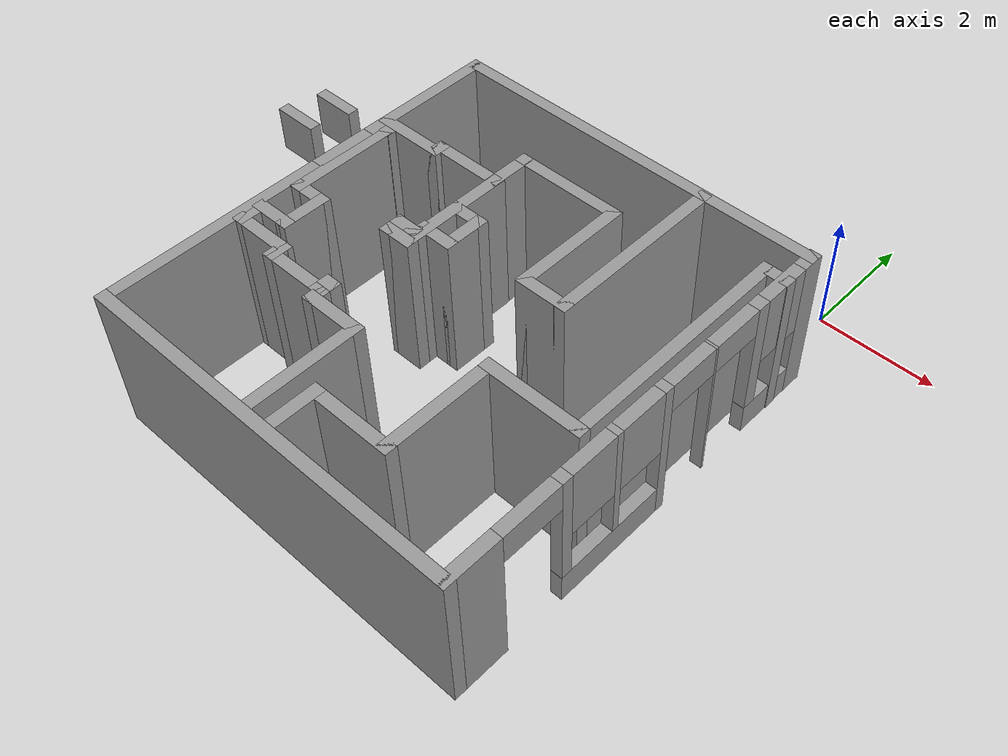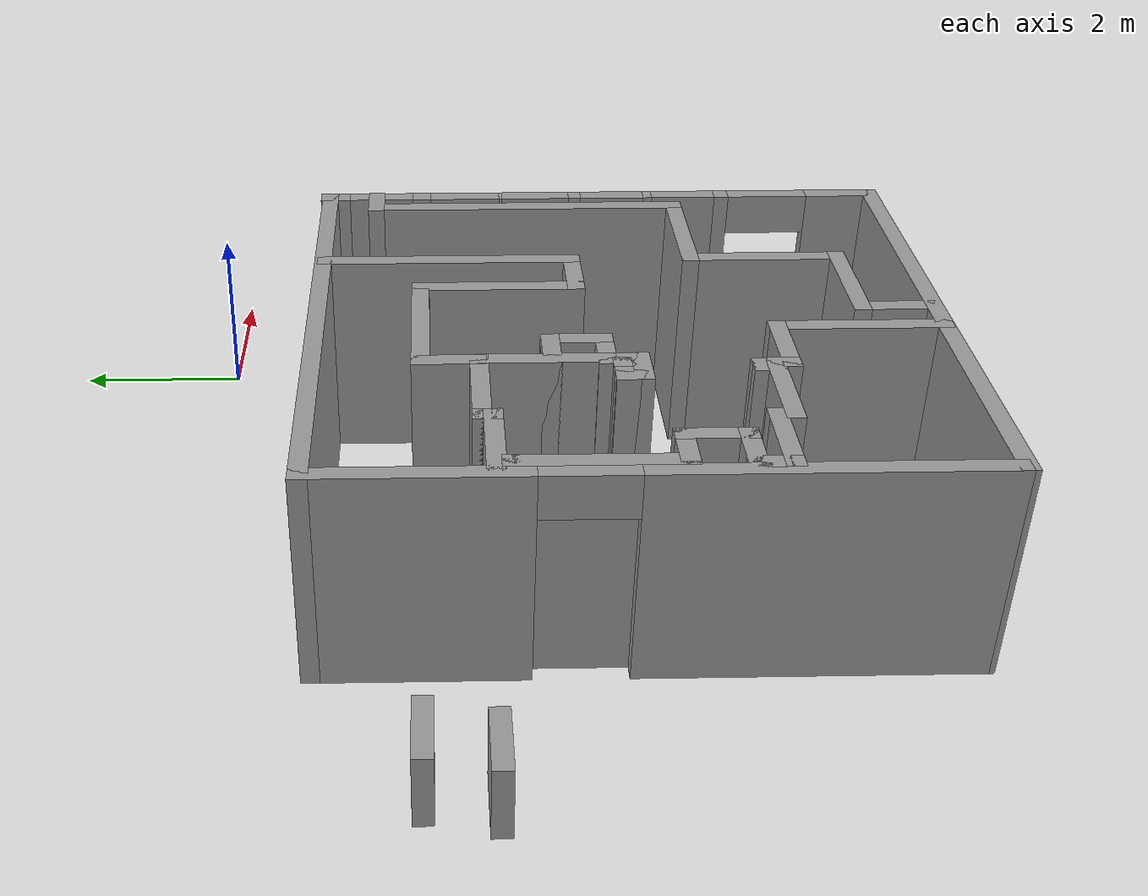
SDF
<?xml version='1.0'?>
<sdf version='1.4'>
  <model name='room_experiments_slam'>
    <link name='Wall_16'>
      <collision name='Wall_16_Collision'>
        <geometry>
          <box>
            <size>6.58 0.2 2.5</size>
          </box>
        </geometry>
        <pose>0 0 1.25 0 -0 0</pose>
      </collision>
      <visual name='Wall_16_Visual'>
        <pose>0 0 1.25 0 -0 0</pose>
        <geometry>
          <box>
            <size>6.58 0.2 2.5</size>
          </box>
        </geometry>
        <material>
          <script>
            <uri>file://media/materials/scripts/gazebo.material</uri>
            <name>Gazebo/Grey</name>
          </script>
        </material>
      </visual>
      <velocity_decay>
        <linear>0</linear>
        <angular>0</angular>
      </velocity_decay>
      <pose>-2.88 -1.33 0 0 -0 3.14159</pose>
    </link>
    <link name='Wall_17'>
      <pose>-6.07 -4.755 0 0 0 -1.5708</pose>
      <visual name='Wall_17_Visual_0'>
        <pose>-2.345 0 1.25 0 -0 0</pose>
        <geometry>
          <box>
            <size>2.36 0.2 2.5</size>
          </box>
        </geometry>
        <material>
          <script>
            <uri>file://media/materials/scripts/gazebo.material</uri>
            <name>Gazebo/Grey</name>
          </script>
        </material>
      </visual>
      <collision name='Wall_17_Collision_0'>
        <geometry>
          <box>
            <size>2.36 0.2 2.5</size>
          </box>
        </geometry>
        <pose>-2.345 0 1.25 0 -0 0</pose>
      </collision>
      <visual name='Wall_17_Visual_1'>
        <pose>1.68 0 1.25 0 -0 0</pose>
        <geometry>
          <box>
            <size>3.69 0.2 2.5</size>
          </box>
        </geometry>
        <material>
          <script>
            <uri>file://media/materials/scripts/gazebo.material</uri>
            <name>Gazebo/Grey</name>
          </script>
        </material>
      </visual>
      <collision name='Wall_17_Collision_1'>
        <geometry>
          <box>
            <size>3.69 0.2 2.5</size>
          </box>
        </geometry>
        <pose>1.68 0 1.25 0 -0 0</pose>
      </collision>
      <visual name='Wall_17_Visual_2'>
        <pose>-0.665 0 2.25 0 -0 0</pose>
        <geometry>
          <box>
            <size>1 0.2 0.5</size>
          </box>
        </geometry>
        <material>
          <script>
            <uri>file://media/materials/scripts/gazebo.material</uri>
            <name>Gazebo/Grey</name>
          </script>
        </material>
      </visual>
      <collision name='Wall_17_Collision_2'>
        <geometry>
          <box>
            <size>1 0.2 0.5</size>
          </box>
        </geometry>
        <pose>-0.665 0 2.25 0 -0 0</pose>
      </collision>
    </link>
    <link name='Wall_20'>
      <collision name='Wall_20_Collision'>
        <geometry>
          <box>
            <size>1.22 0.2 2.5</size>
          </box>
        </geometry>
        <pose>0 0 1.25 0 -0 0</pose>
      </collision>
      <visual name='Wall_20_Visual'>
        <pose>0 0 1.25 0 -0 0</pose>
        <geometry>
          <box>
            <size>1.22 0.2 2.5</size>
          </box>
        </geometry>
        <material>
          <script>
            <uri>file://media/materials/scripts/gazebo.material</uri>
            <name>Gazebo/Grey</name>
          </script>
        </material>
      </visual>
      <velocity_decay>
        <linear>0</linear>
        <angular>0</angular>
      </velocity_decay>
      <pose>-5.54 -3.21 0 0 -0 0</pose>
    </link>
    <link name='Wall_21'>
      <collision name='Wall_21_Collision'>
        <geometry>
          <box>
            <size>0.31 0.2 2.5</size>
          </box>
        </geometry>
        <pose>0 0 1.25 0 -0 0</pose>
      </collision>
      <visual name='Wall_21_Visual'>
        <pose>0 0 1.25 0 -0 0</pose>
        <geometry>
          <box>
            <size>0.31 0.2 2.5</size>
          </box>
        </geometry>
        <material>
          <script>
            <uri>file://media/materials/scripts/gazebo.material</uri>
            <name>Gazebo/Grey</name>
          </script>
        </material>
      </visual>
      <velocity_decay>
        <linear>0</linear>
        <angular>0</angular>
      </velocity_decay>
      <pose>-5.03 -3.155 0 0 -0 1.5708</pose>
    </link>
    <link name='Wall_22'>
      <collision name='Wall_22_Collision'>
        <geometry>
          <box>
            <size>1.31 0.2 2.5</size>
          </box>
        </geometry>
        <pose>0 0 1.25 0 -0 0</pose>
      </collision>
      <visual name='Wall_22_Visual'>
        <pose>0 0 1.25 0 -0 0</pose>
        <geometry>
          <box>
            <size>1.31 0.2 2.5</size>
          </box>
        </geometry>
        <material>
          <script>
            <uri>file://media/materials/scripts/gazebo.material</uri>
            <name>Gazebo/Grey</name>
          </script>
        </material>
      </visual>
      <velocity_decay>
        <linear>0</linear>
        <angular>0</angular>
      </velocity_decay>
      <pose>-4.475 -3.1 0 0 -0 0</pose>
    </link>
    <link name='Wall_23'>
      <collision name='Wall_23_Collision'>
        <geometry>
          <box>
            <size>1.91 0.2 2.5</size>
          </box>
        </geometry>
        <pose>0 0 1.25 0 -0 0</pose>
      </collision>
      <visual name='Wall_23_Visual'>
        <pose>0 0 1.25 0 -0 0</pose>
        <geometry>
          <box>
            <size>1.91 0.2 2.5</size>
          </box>
        </geometry>
        <material>
          <script>
            <uri>file://media/materials/scripts/gazebo.material</uri>
            <name>Gazebo/Grey</name>
          </script>
        </material>
      </visual>
      <velocity_decay>
        <linear>0</linear>
        <angular>0</angular>
      </velocity_decay>
      <pose>-3.92 -3.955 0 0 0 -1.5708</pose>
    </link>
    <link name='Wall_24'>
      <collision name='Wall_24_Collision'>
        <geometry>
          <box>
            <size>0.57 0.2 2.5</size>
          </box>
        </geometry>
        <pose>0 0 1.25 0 -0 0</pose>
      </collision>
      <visual name='Wall_24_Visual'>
        <pose>0 0 1.25 0 -0 0</pose>
        <geometry>
          <box>
            <size>0.57 0.2 2.5</size>
          </box>
        </geometry>
        <material>
          <script>
            <uri>file://media/materials/scripts/gazebo.material</uri>
            <name>Gazebo/Grey</name>
          </script>
        </material>
      </visual>
      <velocity_decay>
        <linear>0</linear>
        <angular>0</angular>
      </velocity_decay>
      <pose>-4.105 -4.81 0 0 -0 3.14159</pose>
    </link>
    <link name='Wall_25'>
      <collision name='Wall_25_Collision'>
        <geometry>
          <box>
            <size>0.4 0.2 2.5</size>
          </box>
        </geometry>
        <pose>0 0 1.25 0 -0 0</pose>
      </collision>
      <visual name='Wall_25_Visual'>
        <pose>0 0 1.25 0 -0 0</pose>
        <geometry>
          <box>
            <size>0.4 0.2 2.5</size>
          </box>
        </geometry>
        <material>
          <script>
            <uri>file://media/materials/scripts/gazebo.material</uri>
            <name>Gazebo/Grey</name>
          </script>
        </material>
      </visual>
      <velocity_decay>
        <linear>0</linear>
        <angular>0</angular>
      </velocity_decay>
      <pose>-4.29 -4.71 0 0 -0 1.5708</pose>
    </link>
    <link name='Wall_26'>
      <collision name='Wall_26_Collision'>
        <geometry>
          <box>
            <size>0.47 0.2 2.5</size>
          </box>
        </geometry>
        <pose>0 0 1.25 0 -0 0</pose>
      </collision>
      <visual name='Wall_26_Visual'>
        <pose>0 0 1.25 0 -0 0</pose>
        <geometry>
          <box>
            <size>0.47 0.2 2.5</size>
          </box>
        </geometry>
        <material>
          <script>
            <uri>file://media/materials/scripts/gazebo.material</uri>
            <name>Gazebo/Grey</name>
          </script>
        </material>
      </visual>
      <velocity_decay>
        <linear>0</linear>
        <angular>0</angular>
      </velocity_decay>
      <pose>-4.155 -4.61 0 0 -0 0</pose>
    </link>
    <link name='Wall_27'>
      <collision name='Wall_27_Collision'>
        <geometry>
          <box>
            <size>0.2 0.2 2.5</size>
          </box>
        </geometry>
        <pose>0 0 1.25 0 -0 0</pose>
      </collision>
      <visual name='Wall_27_Visual'>
        <pose>0 0 1.25 0 -0 0</pose>
        <geometry>
          <box>
            <size>0.2 0.2 2.5</size>
          </box>
        </geometry>
        <material>
          <script>
            <uri>file://media/materials/scripts/gazebo.material</uri>
            <name>Gazebo/Grey</name>
          </script>
        </material>
      </visual>
      <velocity_decay>
        <linear>0</linear>
        <angular>0</angular>
      </velocity_decay>
      <pose>-4.02 -4.61 0 0 -0 0</pose>
    </link>
    <link name='Wall_28'>
      <collision name='Wall_28_Collision'>
        <geometry>
          <box>
            <size>0.222361 0.2 2.5</size>
          </box>
        </geometry>
        <pose>0 0 1.25 0 -0 0</pose>
      </collision>
      <visual name='Wall_28_Visual'>
        <pose>0 0 1.25 0 -0 0</pose>
        <geometry>
          <box>
            <size>0.222361 0.2 2.5</size>
          </box>
        </geometry>
        <material>
          <script>
            <uri>file://media/materials/scripts/gazebo.material</uri>
            <name>Gazebo/Grey</name>
          </script>
        </material>
      </visual>
      <velocity_decay>
        <linear>0</linear>
        <angular>0</angular>
      </velocity_decay>
      <pose>-4.03 -4.615 0 0 0 -2.67794</pose>
    </link>
    <link name='Wall_30'>
      <collision name='Wall_30_Collision'>
        <geometry>
          <box>
            <size>0.66 0.2 2.5</size>
          </box>
        </geometry>
        <pose>0 0 1.25 0 -0 0</pose>
      </collision>
      <visual name='Wall_30_Visual'>
        <pose>0 0 1.25 0 -0 0</pose>
        <geometry>
          <box>
            <size>0.66 0.2 2.5</size>
          </box>
        </geometry>
        <material>
          <script>
            <uri>file://media/materials/scripts/gazebo.material</uri>
            <name>Gazebo/Grey</name>
          </script>
        </material>
      </visual>
      <velocity_decay>
        <linear>0</linear>
        <angular>0</angular>
      </velocity_decay>
      <pose>-3.72 -4.46 0 0 -0 0</pose>
    </link>
    <link name='Wall_31'>
      <collision name='Wall_31_Collision'>
        <geometry>
          <box>
            <size>0.78 0.2 2.5</size>
          </box>
        </geometry>
        <pose>0 0 1.25 0 -0 0</pose>
      </collision>
      <visual name='Wall_31_Visual'>
        <pose>0 0 1.25 0 -0 0</pose>
        <geometry>
          <box>
            <size>0.78 0.2 2.5</size>
          </box>
        </geometry>
        <material>
          <script>
            <uri>file://media/materials/scripts/gazebo.material</uri>
            <name>Gazebo/Grey</name>
          </script>
        </material>
      </visual>
      <velocity_decay>
        <linear>0</linear>
        <angular>0</angular>
      </velocity_decay>
      <pose>-3.49 -4.17 0 0 -0 1.5708</pose>
    </link>
    <link name='Wall_32'>
      <collision name='Wall_32_Collision'>
        <geometry>
          <box>
            <size>0.63 0.2 2.5</size>
          </box>
        </geometry>
        <pose>0 0 1.25 0 -0 0</pose>
      </collision>
      <visual name='Wall_32_Visual'>
        <pose>0 0 1.25 0 -0 0</pose>
        <geometry>
          <box>
            <size>0.63 0.2 2.5</size>
          </box>
        </geometry>
        <material>
          <script>
            <uri>file://media/materials/scripts/gazebo.material</uri>
            <name>Gazebo/Grey</name>
          </script>
        </material>
      </visual>
      <velocity_decay>
        <linear>0</linear>
        <angular>0</angular>
      </velocity_decay>
      <pose>-3.705 -3.88 0 0 -0 3.14159</pose>
    </link>
    <link name='Wall_34'>
      <collision name='Wall_34_Collision'>
        <geometry>
          <box>
            <size>0.8 0.2 2.5</size>
          </box>
        </geometry>
        <pose>0 0 1.25 0 -0 0</pose>
      </collision>
      <visual name='Wall_34_Visual'>
        <pose>0 0 1.25 0 -0 0</pose>
        <geometry>
          <box>
            <size>0.8 0.2 2.5</size>
          </box>
        </geometry>
        <material>
          <script>
            <uri>file://media/materials/scripts/gazebo.material</uri>
            <name>Gazebo/Grey</name>
          </script>
        </material>
      </visual>
      <velocity_decay>
        <linear>0</linear>
        <angular>0</angular>
      </velocity_decay>
      <pose>-3.93 -2.78 0 0 -0 1.5708</pose>
    </link>
    <link name='Wall_35'>
      <collision name='Wall_35_Collision'>
        <geometry>
          <box>
            <size>1.9 0.2 2.5</size>
          </box>
        </geometry>
        <pose>0 0 1.25 0 -0 0</pose>
      </collision>
      <visual name='Wall_35_Visual'>
        <pose>0 0 1.25 0 -0 0</pose>
        <geometry>
          <box>
            <size>1.9 0.2 2.5</size>
          </box>
        </geometry>
        <material>
          <script>
            <uri>file://media/materials/scripts/gazebo.material</uri>
            <name>Gazebo/Grey</name>
          </script>
        </material>
      </visual>
      <velocity_decay>
        <linear>0</linear>
        <angular>0</angular>
      </velocity_decay>
      <pose>-3.08 -2.48 0 0 -0 0</pose>
    </link>
    <link name='Wall_36'>
      <collision name='Wall_36_Collision'>
        <geometry>
          <box>
            <size>1.98 0.2 2.5</size>
          </box>
        </geometry>
        <pose>0 0 1.25 0 -0 0</pose>
      </collision>
      <visual name='Wall_36_Visual'>
        <pose>0 0 1.25 0 -0 0</pose>
        <geometry>
          <box>
            <size>1.98 0.2 2.5</size>
          </box>
        </geometry>
        <material>
          <script>
            <uri>file://media/materials/scripts/gazebo.material</uri>
            <name>Gazebo/Grey</name>
          </script>
        </material>
      </visual>
      <velocity_decay>
        <linear>0</linear>
        <angular>0</angular>
      </velocity_decay>
      <pose>-2.23 -3.37 0 0 0 -1.5708</pose>
    </link>
    <link name='Wall_37'>
      <collision name='Wall_37_Collision'>
        <geometry>
          <box>
            <size>0.9 0.2 2.5</size>
          </box>
        </geometry>
        <pose>0 0 1.25 0 -0 0</pose>
      </collision>
      <visual name='Wall_37_Visual'>
        <pose>0 0 1.25 0 -0 0</pose>
        <geometry>
          <box>
            <size>0.9 0.2 2.5</size>
          </box>
        </geometry>
        <material>
          <script>
            <uri>file://media/materials/scripts/gazebo.material</uri>
            <name>Gazebo/Grey</name>
          </script>
        </material>
      </visual>
      <velocity_decay>
        <linear>0</linear>
        <angular>0</angular>
      </velocity_decay>
      <pose>-1.88 -4.26 0 0 -0 0</pose>
    </link>
    <link name='Wall_38'>
      <collision name='Wall_38_Collision'>
        <geometry>
          <box>
            <size>3.1 0.2 2.5</size>
          </box>
        </geometry>
        <pose>0 0 1.25 0 -0 0</pose>
      </collision>
      <visual name='Wall_38_Visual'>
        <pose>0 0 1.25 0 -0 0</pose>
        <geometry>
          <box>
            <size>3.1 0.2 2.5</size>
          </box>
        </geometry>
        <material>
          <script>
            <uri>file://media/materials/scripts/gazebo.material</uri>
            <name>Gazebo/Grey</name>
          </script>
        </material>
      </visual>
      <velocity_decay>
        <linear>0</linear>
        <angular>0</angular>
      </velocity_decay>
      <pose>-1.53 -2.81 0 0 -0 1.5708</pose>
    </link>
    <link name='Wall_40'>
      <collision name='Wall_40_Collision'>
        <geometry>
          <box>
            <size>0.53 0.2 2.5</size>
          </box>
        </geometry>
        <pose>0 0 1.25 0 -0 0</pose>
      </collision>
      <visual name='Wall_40_Visual'>
        <pose>0 0 1.25 0 -0 0</pose>
        <geometry>
          <box>
            <size>0.53 0.2 2.5</size>
          </box>
        </geometry>
        <material>
          <script>
            <uri>file://media/materials/scripts/gazebo.material</uri>
            <name>Gazebo/Grey</name>
          </script>
        </material>
      </visual>
      <velocity_decay>
        <linear>0</linear>
        <angular>0</angular>
      </velocity_decay>
      <pose>0.155 -1.92 0 0 -0 3.14159</pose>
    </link>
    <link name='Wall_41'>
      <collision name='Wall_41_Collision'>
        <geometry>
          <box>
            <size>3.95 0.2 2.5</size>
          </box>
        </geometry>
        <pose>0 0 1.25 0 -0 0</pose>
      </collision>
      <visual name='Wall_41_Visual'>
        <pose>0 0 1.25 0 -0 0</pose>
        <geometry>
          <box>
            <size>3.95 0.2 2.5</size>
          </box>
        </geometry>
        <material>
          <script>
            <uri>file://media/materials/scripts/gazebo.material</uri>
            <name>Gazebo/Grey</name>
          </script>
        </material>
      </visual>
      <velocity_decay>
        <linear>0</linear>
        <angular>0</angular>
      </velocity_decay>
      <pose>-0.01 -3.795 0 0 0 -1.5708</pose>
    </link>
    <link name='Wall_42'>
      <collision name='Wall_42_Collision'>
        <geometry>
          <box>
            <size>1.71 0.2 2.5</size>
          </box>
        </geometry>
        <pose>0 0 1.25 0 -0 0</pose>
      </collision>
      <visual name='Wall_42_Visual'>
        <pose>0 0 1.25 0 -0 0</pose>
        <geometry>
          <box>
            <size>1.71 0.2 2.5</size>
          </box>
        </geometry>
        <material>
          <script>
            <uri>file://media/materials/scripts/gazebo.material</uri>
            <name>Gazebo/Grey</name>
          </script>
        </material>
      </visual>
      <velocity_decay>
        <linear>0</linear>
        <angular>0</angular>
      </velocity_decay>
      <pose>-0.765 -5.67 0 0 -0 3.14159</pose>
    </link>
    <link name='Wall_43'>
      <collision name='Wall_43_Collision'>
        <geometry>
          <box>
            <size>1.95 0.2 2.5</size>
          </box>
        </geometry>
        <pose>0 0 1.25 0 -0 0</pose>
      </collision>
      <visual name='Wall_43_Visual'>
        <pose>0 0 1.25 0 -0 0</pose>
        <geometry>
          <box>
            <size>1.95 0.2 2.5</size>
          </box>
        </geometry>
        <material>
          <script>
            <uri>file://media/materials/scripts/gazebo.material</uri>
            <name>Gazebo/Grey</name>
          </script>
        </material>
      </visual>
      <velocity_decay>
        <linear>0</linear>
        <angular>0</angular>
      </velocity_decay>
      <pose>-1.52 -6.545 0 0 0 -1.5708</pose>
    </link>
    <link name='Wall_44'>
      <collision name='Wall_44_Collision'>
        <geometry>
          <box>
            <size>1.48 0.2 2.5</size>
          </box>
        </geometry>
        <pose>0 0 1.25 0 -0 0</pose>
      </collision>
      <visual name='Wall_44_Visual'>
        <pose>0 0 1.25 0 -0 0</pose>
        <geometry>
          <box>
            <size>1.48 0.2 2.5</size>
          </box>
        </geometry>
        <material>
          <script>
            <uri>file://media/materials/scripts/gazebo.material</uri>
            <name>Gazebo/Grey</name>
          </script>
        </material>
      </visual>
      <velocity_decay>
        <linear>0</linear>
        <angular>0</angular>
      </velocity_decay>
      <pose>-2.16 -7.42 0 0 -0 3.14159</pose>
    </link>
    <link name='Wall_45'>
      <collision name='Wall_45_Collision'>
        <geometry>
          <box>
            <size>1 0.2 2.5</size>
          </box>
        </geometry>
        <pose>0 0 1.25 0 -0 0</pose>
      </collision>
      <visual name='Wall_45_Visual'>
        <pose>0 0 1.25 0 -0 0</pose>
        <geometry>
          <box>
            <size>1 0.2 2.5</size>
          </box>
        </geometry>
        <material>
          <script>
            <uri>file://media/materials/scripts/gazebo.material</uri>
            <name>Gazebo/Grey</name>
          </script>
        </material>
      </visual>
      <velocity_decay>
        <linear>0</linear>
        <angular>0</angular>
      </velocity_decay>
      <pose>-2.8 -7.82 0 0 0 -1.5708</pose>
    </link>
    <link name='Wall_48'>
      <collision name='Wall_48_Collision'>
        <geometry>
          <box>
            <size>2.04 0.2 2.5</size>
          </box>
        </geometry>
        <pose>0 0 1.25 0 -0 0</pose>
      </collision>
      <visual name='Wall_48_Visual'>
        <pose>0 0 1.25 0 -0 0</pose>
        <geometry>
          <box>
            <size>2.04 0.2 2.5</size>
          </box>
        </geometry>
        <material>
          <script>
            <uri>file://media/materials/scripts/gazebo.material</uri>
            <name>Gazebo/Grey</name>
          </script>
        </material>
      </visual>
      <velocity_decay>
        <linear>0</linear>
        <angular>0</angular>
      </velocity_decay>
      <pose>-3.24 -7.31 0 0 -0 1.5708</pose>
    </link>
    <link name='Wall_49'>
      <collision name='Wall_49_Collision'>
        <geometry>
          <box>
            <size>1.02 0.2 2.5</size>
          </box>
        </geometry>
        <pose>0 0 1.25 0 -0 0</pose>
      </collision>
      <visual name='Wall_49_Visual'>
        <pose>0 0 1.25 0 -0 0</pose>
        <geometry>
          <box>
            <size>1.02 0.2 2.5</size>
          </box>
        </geometry>
        <material>
          <script>
            <uri>file://media/materials/scripts/gazebo.material</uri>
            <name>Gazebo/Grey</name>
          </script>
        </material>
      </visual>
      <velocity_decay>
        <linear>0</linear>
        <angular>0</angular>
      </velocity_decay>
      <pose>-3.65 -6.39 0 0 -0 3.14159</pose>
    </link>
    <link name='Wall_50'>
      <collision name='Wall_50_Collision'>
        <geometry>
          <box>
            <size>0.52 0.2 2.5</size>
          </box>
        </geometry>
        <pose>0 0 1.25 0 -0 0</pose>
      </collision>
      <visual name='Wall_50_Visual'>
        <pose>0 0 1.25 0 -0 0</pose>
        <geometry>
          <box>
            <size>0.52 0.2 2.5</size>
          </box>
        </geometry>
        <material>
          <script>
            <uri>file://media/materials/scripts/gazebo.material</uri>
            <name>Gazebo/Grey</name>
          </script>
        </material>
      </visual>
      <velocity_decay>
        <linear>0</linear>
        <angular>0</angular>
      </velocity_decay>
      <pose>-4.06 -6.23 0 0 -0 1.5708</pose>
    </link>
    <link name='Wall_51'>
      <collision name='Wall_51_Collision'>
        <geometry>
          <box>
            <size>0.27 0.2 2.5</size>
          </box>
        </geometry>
        <pose>0 0 1.25 0 -0 0</pose>
      </collision>
      <visual name='Wall_51_Visual'>
        <pose>0 0 1.25 0 -0 0</pose>
        <geometry>
          <box>
            <size>0.27 0.2 2.5</size>
          </box>
        </geometry>
        <material>
          <script>
            <uri>file://media/materials/scripts/gazebo.material</uri>
            <name>Gazebo/Grey</name>
          </script>
        </material>
      </visual>
      <velocity_decay>
        <linear>0</linear>
        <angular>0</angular>
      </velocity_decay>
      <pose>-4.095 -6.07 0 0 -0 3.14159</pose>
    </link>
    <link name='Wall_52'>
      <collision name='Wall_52_Collision'>
        <geometry>
          <box>
            <size>0.35 0.2 2.5</size>
          </box>
        </geometry>
        <pose>0 0 1.25 0 -0 0</pose>
      </collision>
      <visual name='Wall_52_Visual'>
        <pose>0 0 1.25 0 -0 0</pose>
        <geometry>
          <box>
            <size>0.35 0.2 2.5</size>
          </box>
        </geometry>
        <material>
          <script>
            <uri>file://media/materials/scripts/gazebo.material</uri>
            <name>Gazebo/Grey</name>
          </script>
        </material>
      </visual>
      <velocity_decay>
        <linear>0</linear>
        <angular>0</angular>
      </velocity_decay>
      <pose>-4.13 -6.145 0 0 0 -1.5708</pose>
    </link>
    <link name='Wall_53'>
      <collision name='Wall_53_Collision'>
        <geometry>
          <box>
            <size>1.15 0.2 2.5</size>
          </box>
        </geometry>
        <pose>0 0 1.25 0 -0 0</pose>
      </collision>
      <visual name='Wall_53_Visual'>
        <pose>0 0 1.25 0 -0 0</pose>
        <geometry>
          <box>
            <size>1.15 0.2 2.5</size>
          </box>
        </geometry>
        <material>
          <script>
            <uri>file://media/materials/scripts/gazebo.material</uri>
            <name>Gazebo/Grey</name>
          </script>
        </material>
      </visual>
      <velocity_decay>
        <linear>0</linear>
        <angular>0</angular>
      </velocity_decay>
      <pose>-4.605 -6.22 0 0 -0 3.14159</pose>
    </link>
    <link name='Wall_54'>
      <collision name='Wall_54_Collision'>
        <geometry>
          <box>
            <size>0.37 0.2 2.5</size>
          </box>
        </geometry>
        <pose>0 0 1.25 0 -0 0</pose>
      </collision>
      <visual name='Wall_54_Visual'>
        <pose>0 0 1.25 0 -0 0</pose>
        <geometry>
          <box>
            <size>0.37 0.2 2.5</size>
          </box>
        </geometry>
        <material>
          <script>
            <uri>file://media/materials/scripts/gazebo.material</uri>
            <name>Gazebo/Grey</name>
          </script>
        </material>
      </visual>
      <velocity_decay>
        <linear>0</linear>
        <angular>0</angular>
      </velocity_decay>
      <pose>-5.08 -6.135 0 0 -0 1.5708</pose>
    </link>
    <link name='Wall_55'>
      <collision name='Wall_55_Collision'>
        <geometry>
          <box>
            <size>1.07 0.2 2.5</size>
          </box>
        </geometry>
        <pose>0 0 1.25 0 -0 0</pose>
      </collision>
      <visual name='Wall_55_Visual'>
        <pose>0 0 1.25 0 -0 0</pose>
        <geometry>
          <box>
            <size>1.07 0.2 2.5</size>
          </box>
        </geometry>
        <material>
          <script>
            <uri>file://media/materials/scripts/gazebo.material</uri>
            <name>Gazebo/Grey</name>
          </script>
        </material>
      </visual>
      <velocity_decay>
        <linear>0</linear>
        <angular>0</angular>
      </velocity_decay>
      <pose>-5.515 -6.05 0 0 -0 3.14159</pose>
    </link>
    <link name='Wall_56'>
      <collision name='Wall_56_Collision'>
        <geometry>
          <box>
            <size>0.55 0.2 2.5</size>
          </box>
        </geometry>
        <pose>0 0 1.25 0 -0 0</pose>
      </collision>
      <visual name='Wall_56_Visual'>
        <pose>0 0 1.25 0 -0 0</pose>
        <geometry>
          <box>
            <size>0.55 0.2 2.5</size>
          </box>
        </geometry>
        <material>
          <script>
            <uri>file://media/materials/scripts/gazebo.material</uri>
            <name>Gazebo/Grey</name>
          </script>
        </material>
      </visual>
      <velocity_decay>
        <linear>0</linear>
        <angular>0</angular>
      </velocity_decay>
      <pose>-5.95 -5.875 0 0 -0 1.5708</pose>
    </link>
    <link name='Wall_57'>
      <collision name='Wall_57_Collision'>
        <geometry>
          <box>
            <size>0.71 0.2 2.5</size>
          </box>
        </geometry>
        <pose>0 0 1.25 0 -0 0</pose>
      </collision>
      <visual name='Wall_57_Visual'>
        <pose>0 0 1.25 0 -0 0</pose>
        <geometry>
          <box>
            <size>0.71 0.2 2.5</size>
          </box>
        </geometry>
        <material>
          <script>
            <uri>file://media/materials/scripts/gazebo.material</uri>
            <name>Gazebo/Grey</name>
          </script>
        </material>
      </visual>
      <velocity_decay>
        <linear>0</linear>
        <angular>0</angular>
      </velocity_decay>
      <pose>-5.695 -5.7 0 0 -0 0</pose>
    </link>
    <link name='Wall_58'>
      <collision name='Wall_58_Collision'>
        <geometry>
          <box>
            <size>0.84 0.2 2.5</size>
          </box>
        </geometry>
        <pose>0 0 1.25 0 -0 0</pose>
      </collision>
      <visual name='Wall_58_Visual'>
        <pose>0 0 1.25 0 -0 0</pose>
        <geometry>
          <box>
            <size>0.84 0.2 2.5</size>
          </box>
        </geometry>
        <material>
          <script>
            <uri>file://media/materials/scripts/gazebo.material</uri>
            <name>Gazebo/Grey</name>
          </script>
        </material>
      </visual>
      <velocity_decay>
        <linear>0</linear>
        <angular>0</angular>
      </velocity_decay>
      <pose>-5.44 -5.38 0 0 -0 1.5708</pose>
    </link>
    <link name='Wall_59'>
      <collision name='Wall_59_Collision'>
        <geometry>
          <box>
            <size>0.65 0.2 2.5</size>
          </box>
        </geometry>
        <pose>0 0 1.25 0 -0 0</pose>
      </collision>
      <visual name='Wall_59_Visual'>
        <pose>0 0 1.25 0 -0 0</pose>
        <geometry>
          <box>
            <size>0.65 0.2 2.5</size>
          </box>
        </geometry>
        <material>
          <script>
            <uri>file://media/materials/scripts/gazebo.material</uri>
            <name>Gazebo/Grey</name>
          </script>
        </material>
      </visual>
      <velocity_decay>
        <linear>0</linear>
        <angular>0</angular>
      </velocity_decay>
      <pose>-5.665 -5.06 0 0 -0 3.14159</pose>
    </link>
    <link name='Wall_60'>
      <collision name='Wall_60_Collision'>
        <geometry>
          <box>
            <size>1.9 0.2 2.5</size>
          </box>
        </geometry>
        <pose>0 0 1.25 0 -0 0</pose>
      </collision>
      <visual name='Wall_60_Visual'>
        <pose>0 0 1.25 0 -0 0</pose>
        <geometry>
          <box>
            <size>1.9 0.2 2.5</size>
          </box>
        </geometry>
        <material>
          <script>
            <uri>file://media/materials/scripts/gazebo.material</uri>
            <name>Gazebo/Grey</name>
          </script>
        </material>
      </visual>
      <velocity_decay>
        <linear>0</linear>
        <angular>0</angular>
      </velocity_decay>
      <pose>-5.89 -4.21 0 0 -0 1.5708</pose>
    </link>
    <link name='Wall_61'>
      <collision name='Wall_61_Collision'>
        <geometry>
          <box>
            <size>0.21 0.2 2.5</size>
          </box>
        </geometry>
        <pose>0 0 1.25 0 -0 0</pose>
      </collision>
      <visual name='Wall_61_Visual'>
        <pose>0 0 1.25 0 -0 0</pose>
        <geometry>
          <box>
            <size>0.21 0.2 2.5</size>
          </box>
        </geometry>
        <material>
          <script>
            <uri>file://media/materials/scripts/gazebo.material</uri>
            <name>Gazebo/Grey</name>
          </script>
        </material>
      </visual>
      <velocity_decay>
        <linear>0</linear>
        <angular>0</angular>
      </velocity_decay>
      <pose>-5.885 -3.36 0 0 -0 0</pose>
    </link>
    <link name='Wall_8'>
      <pose>0.31 -4.775 0 0 0 -1.5708</pose>
      <visual name='Wall_8_Visual_0'>
        <pose>-3.38 0 1.25 0 -0 0</pose>
        <geometry>
          <box>
            <size>0.37 0.2 2.5</size>
          </box>
        </geometry>
        <material>
          <script>
            <uri>file://media/materials/scripts/gazebo.material</uri>
            <name>Gazebo/Grey</name>
          </script>
        </material>
      </visual>
      <collision name='Wall_8_Collision_0'>
        <geometry>
          <box>
            <size>0.37 0.2 2.5</size>
          </box>
        </geometry>
        <pose>-3.38 0 1.25 0 -0 0</pose>
      </collision>
      <visual name='Wall_8_Visual_1'>
        <pose>-1.28 0 1.25 0 -0 0</pose>
        <geometry>
          <box>
            <size>0.04 0.2 2.5</size>
          </box>
        </geometry>
        <material>
          <script>
            <uri>file://media/materials/scripts/gazebo.material</uri>
            <name>Gazebo/Grey</name>
          </script>
        </material>
      </visual>
      <collision name='Wall_8_Collision_1'>
        <geometry>
          <box>
            <size>0.04 0.2 2.5</size>
          </box>
        </geometry>
        <pose>-1.28 0 1.25 0 -0 0</pose>
      </collision>
      <visual name='Wall_8_Visual_2'>
        <pose>-0.3325 0 1.25 0 -0 0</pose>
        <geometry>
          <box>
            <size>0.155 0.2 2.5</size>
          </box>
        </geometry>
        <material>
          <script>
            <uri>file://media/materials/scripts/gazebo.material</uri>
            <name>Gazebo/Grey</name>
          </script>
        </material>
      </visual>
      <collision name='Wall_8_Collision_2'>
        <geometry>
          <box>
            <size>0.155 0.2 2.5</size>
          </box>
        </geometry>
        <pose>-0.3325 0 1.25 0 -0 0</pose>
      </collision>
      <visual name='Wall_8_Visual_3'>
        <pose>3.1 0 1.25 0 -0 0</pose>
        <geometry>
          <box>
            <size>0.93 0.2 2.5</size>
          </box>
        </geometry>
        <material>
          <script>
            <uri>file://media/materials/scripts/gazebo.material</uri>
            <name>Gazebo/Grey</name>
          </script>
        </material>
      </visual>
      <collision name='Wall_8_Collision_3'>
        <geometry>
          <box>
            <size>0.93 0.2 2.5</size>
          </box>
        </geometry>
        <pose>3.1 0 1.25 0 -0 0</pose>
      </collision>
      <visual name='Wall_8_Visual_4'>
        <pose>-2.6825 0 0.25 0 -0 0</pose>
        <geometry>
          <box>
            <size>1.025 0.2 0.5</size>
          </box>
        </geometry>
        <material>
          <script>
            <uri>file://media/materials/scripts/gazebo.material</uri>
            <name>Gazebo/Grey</name>
          </script>
        </material>
      </visual>
      <collision name='Wall_8_Collision_4'>
        <geometry>
          <box>
            <size>1.025 0.2 0.5</size>
          </box>
        </geometry>
        <pose>-2.6825 0 0.25 0 -0 0</pose>
      </collision>
      <visual name='Wall_8_Visual_5'>
        <pose>0.69 0 0.25 0 -0 0</pose>
        <geometry>
          <box>
            <size>1.89 0.2 0.5</size>
          </box>
        </geometry>
        <material>
          <script>
            <uri>file://media/materials/scripts/gazebo.material</uri>
            <name>Gazebo/Grey</name>
          </script>
        </material>
      </visual>
      <collision name='Wall_8_Collision_5'>
        <geometry>
          <box>
            <size>1.89 0.2 0.5</size>
          </box>
        </geometry>
        <pose>0.69 0 0.25 0 -0 0</pose>
      </collision>
      <visual name='Wall_8_Visual_6'>
        <pose>-2.2825 0 1.5 0 -0 0</pose>
        <geometry>
          <box>
            <size>0.225 0.2 2</size>
          </box>
        </geometry>
        <material>
          <script>
            <uri>file://media/materials/scripts/gazebo.material</uri>
            <name>Gazebo/Grey</name>
          </script>
        </material>
      </visual>
      <collision name='Wall_8_Collision_6'>
        <geometry>
          <box>
            <size>0.225 0.2 2</size>
          </box>
        </geometry>
        <pose>-2.2825 0 1.5 0 -0 0</pose>
      </collision>
      <visual name='Wall_8_Visual_7'>
        <pose>-2.2825 0 1.5 0 -0 0</pose>
        <geometry>
          <box>
            <size>0.225 0.2 2</size>
          </box>
        </geometry>
        <material>
          <script>
            <uri>file://media/materials/scripts/gazebo.material</uri>
            <name>Gazebo/Grey</name>
          </script>
        </material>
      </visual>
      <collision name='Wall_8_Collision_7'>
        <geometry>
          <box>
            <size>0.225 0.2 2</size>
          </box>
        </geometry>
        <pose>-2.2825 0 1.5 0 -0 0</pose>
      </collision>
      <visual name='Wall_8_Visual_8'>
        <pose>0.6 0 1.5 0 -0 0</pose>
        <geometry>
          <box>
            <size>0.11 0.2 2</size>
          </box>
        </geometry>
        <material>
          <script>
            <uri>file://media/materials/scripts/gazebo.material</uri>
            <name>Gazebo/Grey</name>
          </script>
        </material>
      </visual>
      <collision name='Wall_8_Collision_8'>
        <geometry>
          <box>
            <size>0.11 0.2 2</size>
          </box>
        </geometry>
        <pose>0.6 0 1.5 0 -0 0</pose>
      </collision>
      <visual name='Wall_8_Visual_9'>
        <pose>1.545 0 1.5 0 -0 0</pose>
        <geometry>
          <box>
            <size>0.18 0.2 2</size>
          </box>
        </geometry>
        <material>
          <script>
            <uri>file://media/materials/scripts/gazebo.material</uri>
            <name>Gazebo/Grey</name>
          </script>
        </material>
      </visual>
      <collision name='Wall_8_Collision_9'>
        <geometry>
          <box>
            <size>0.18 0.2 2</size>
          </box>
        </geometry>
        <pose>1.545 0 1.5 0 -0 0</pose>
      </collision>
      <visual name='Wall_8_Visual_10'>
        <pose>-2.795 0 1.9 0 -0 0</pose>
        <geometry>
          <box>
            <size>0.8 0.2 1.2</size>
          </box>
        </geometry>
        <material>
          <script>
            <uri>file://media/materials/scripts/gazebo.material</uri>
            <name>Gazebo/Grey</name>
          </script>
        </material>
      </visual>
      <collision name='Wall_8_Collision_10'>
        <geometry>
          <box>
            <size>0.8 0.2 1.2</size>
          </box>
        </geometry>
        <pose>-2.795 0 1.9 0 -0 0</pose>
      </collision>
      <visual name='Wall_8_Visual_11'>
        <pose>0.145 0 1.9 0 -0 0</pose>
        <geometry>
          <box>
            <size>0.8 0.2 1.2</size>
          </box>
        </geometry>
        <material>
          <script>
            <uri>file://media/materials/scripts/gazebo.material</uri>
            <name>Gazebo/Grey</name>
          </script>
        </material>
      </visual>
      <collision name='Wall_8_Collision_11'>
        <geometry>
          <box>
            <size>0.8 0.2 1.2</size>
          </box>
        </geometry>
        <pose>0.145 0 1.9 0 -0 0</pose>
      </collision>
      <visual name='Wall_8_Visual_12'>
        <pose>1.055 0 1.9 0 -0 0</pose>
        <geometry>
          <box>
            <size>0.8 0.2 1.2</size>
          </box>
        </geometry>
        <material>
          <script>
            <uri>file://media/materials/scripts/gazebo.material</uri>
            <name>Gazebo/Grey</name>
          </script>
        </material>
      </visual>
      <collision name='Wall_8_Collision_12'>
        <geometry>
          <box>
            <size>0.8 0.2 1.2</size>
          </box>
        </geometry>
        <pose>1.055 0 1.9 0 -0 0</pose>
      </collision>
      <visual name='Wall_8_Visual_13'>
        <pose>-0.835 0 2.25 0 -0 0</pose>
        <geometry>
          <box>
            <size>0.85 0.2 0.5</size>
          </box>
        </geometry>
        <material>
          <script>
            <uri>file://media/materials/scripts/gazebo.material</uri>
            <name>Gazebo/Grey</name>
          </script>
        </material>
      </visual>
      <collision name='Wall_8_Collision_13'>
        <geometry>
          <box>
            <size>0.85 0.2 0.5</size>
          </box>
        </geometry>
        <pose>-0.835 0 2.25 0 -0 0</pose>
      </collision>
      <visual name='Wall_8_Visual_14'>
        <pose>-1.735 0 2.25 0 -0 0</pose>
        <geometry>
          <box>
            <size>0.87 0.2 0.5</size>
          </box>
        </geometry>
        <material>
          <script>
            <uri>file://media/materials/scripts/gazebo.material</uri>
            <name>Gazebo/Grey</name>
          </script>
        </material>
      </visual>
      <collision name='Wall_8_Collision_14'>
        <geometry>
          <box>
            <size>0.87 0.2 0.5</size>
          </box>
        </geometry>
        <pose>-1.735 0 2.25 0 -0 0</pose>
      </collision>
      <visual name='Wall_8_Visual_15'>
        <pose>-1.735 0 2.25 0 -0 0</pose>
        <geometry>
          <box>
            <size>0.87 0.2 0.5</size>
          </box>
        </geometry>
        <material>
          <script>
            <uri>file://media/materials/scripts/gazebo.material</uri>
            <name>Gazebo/Grey</name>
          </script>
        </material>
      </visual>
      <collision name='Wall_8_Collision_15'>
        <geometry>
          <box>
            <size>0.87 0.2 0.5</size>
          </box>
        </geometry>
        <pose>-1.735 0 2.25 0 -0 0</pose>
      </collision>
      <visual name='Wall_8_Visual_16'>
        <pose>2.135 0 2.25 0 -0 0</pose>
        <geometry>
          <box>
            <size>1 0.2 0.5</size>
          </box>
        </geometry>
        <material>
          <script>
            <uri>file://media/materials/scripts/gazebo.material</uri>
            <name>Gazebo/Grey</name>
          </script>
        </material>
      </visual>
      <collision name='Wall_8_Collision_16'>
        <geometry>
          <box>
            <size>1 0.2 0.5</size>
          </box>
        </geometry>
        <pose>2.135 0 2.25 0 -0 0</pose>
      </collision>
    </link>
    <link name='Wall_9'>
      <collision name='Wall_9_Collision'>
        <geometry>
          <box>
            <size>6.58 0.2 2.5</size>
          </box>
        </geometry>
        <pose>0 0 1.25 0 -0 0</pose>
      </collision>
      <visual name='Wall_9_Visual'>
        <pose>0 0 1.25 0 -0 0</pose>
        <geometry>
          <box>
            <size>6.58 0.2 2.5</size>
          </box>
        </geometry>
        <material>
          <script>
            <uri>file://media/materials/scripts/gazebo.material</uri>
            <name>Gazebo/Grey</name>
          </script>
        </material>
      </visual>
      <velocity_decay>
        <linear>0</linear>
        <angular>0</angular>
      </velocity_decay>
      <pose>-2.88 -8.24 0 0 -0 3.14159</pose>
    </link>
    <link name='Window_2'>
      <collision name='Window_2_Collision'>
        <geometry>
          <box>
            <size>0.8 0.2 0.8</size>
          </box>
        </geometry>
        <pose>0 0 0.4 0 -0 0</pose>
      </collision>
      <visual name='Window_2_Visual'>
        <pose>0 0 0.4 0 -0 0</pose>
        <geometry>
          <box>
            <size>0.8 0.2 0.8</size>
          </box>
        </geometry>
        <material>
          <script>
            <uri>file://media/materials/scripts/gazebo.material</uri>
            <name>Gazebo/Grey</name>
          </script>
        </material>
      </visual>
      <velocity_decay>
        <linear>0</linear>
        <angular>0</angular>
      </velocity_decay>
      <pose>-8.24 -2.49 0.5 0 -0 0</pose>
    </link>
    <link name='Window_4'>
      <collision name='Window_4_Collision'>
        <geometry>
          <box>
            <size>0.8 0.2 0.8</size>
          </box>
        </geometry>
        <pose>0 0 0.4 0 -0 0</pose>
      </collision>
      <visual name='Window_4_Visual'>
        <pose>0 0 0.4 0 -0 0</pose>
        <geometry>
          <box>
            <size>0.8 0.2 0.8</size>
          </box>
        </geometry>
        <material>
          <script>
            <uri>file://media/materials/scripts/gazebo.material</uri>
            <name>Gazebo/Grey</name>
          </script>
        </material>
      </visual>
      <velocity_decay>
        <linear>0</linear>
        <angular>0</angular>
      </velocity_decay>
      <pose>-8.4 -3.17 0.5 0 -0 0</pose>
    </link>
    <static>1</static>
  </model>
</sdf>
